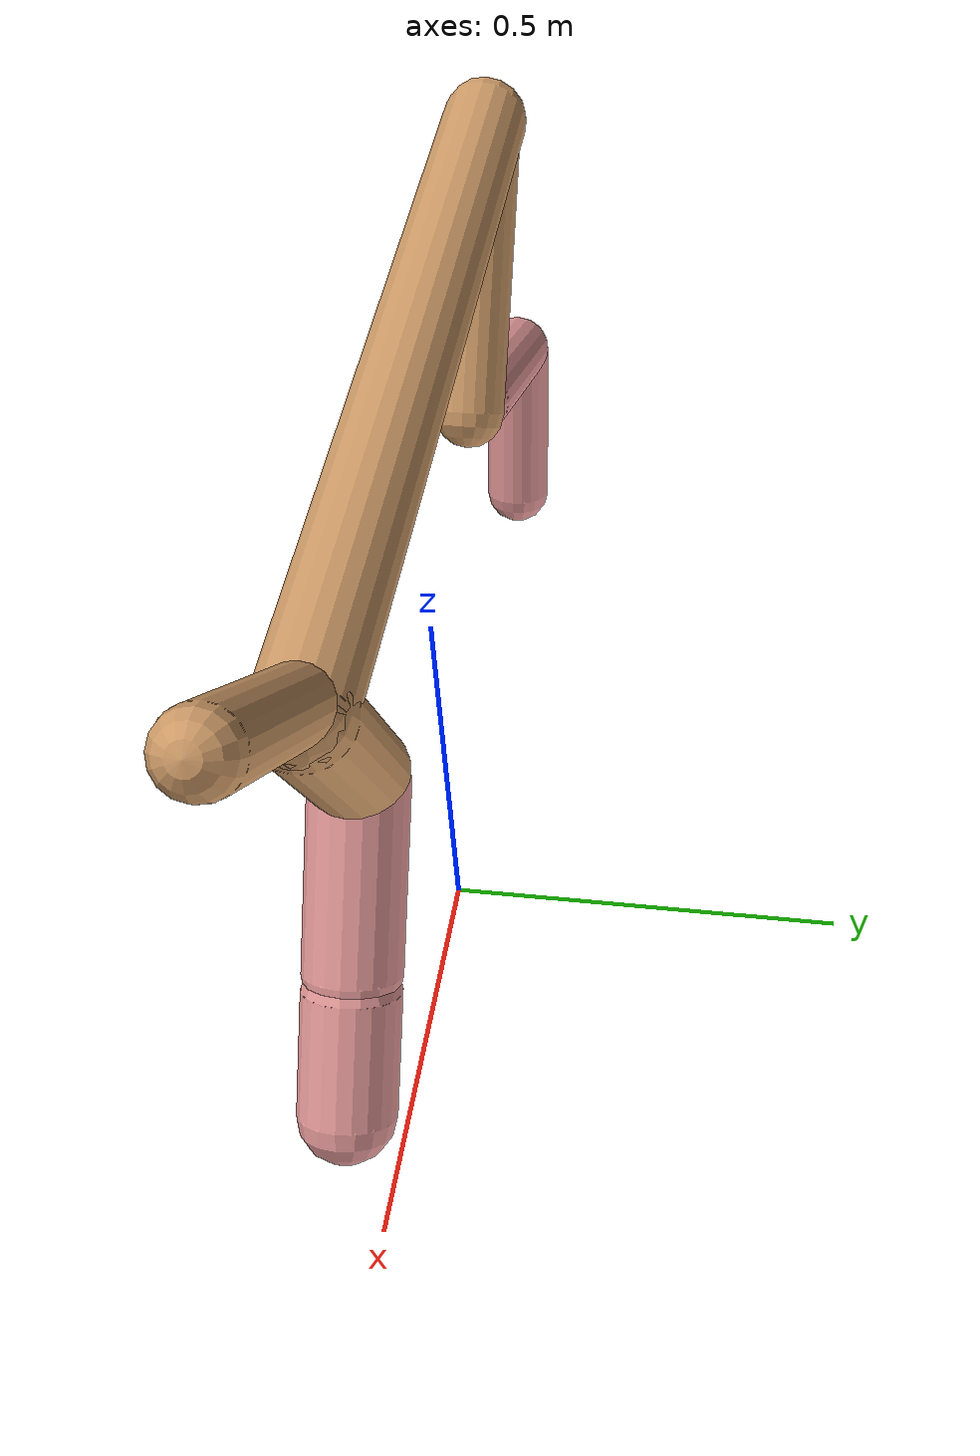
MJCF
<mujoco model="cheetah">
  <compiler angle="radian" coordinate="local" inertiafromgeom="true" settotalmass="14" />
  <default>
    <joint armature=".1" damping=".01" limited="true" solimplimit="0 .8 .03" solreflimit=".02 1" stiffness="8" />
    <geom conaffinity="0" condim="3" contype="1" friction="0.8 .1 .1" rgba="0.8 0.6 .4 1" solimp="0.0 0.8 0.01" solref="0.02 1" />
    <motor ctrllimited="true" ctrlrange="-1 1" />
  </default>
  <size nstack="300000" nuser_geom="1" />
  <option gravity="0 0 -9.81" timestep="0.01" />
  <worldbody>
    <body name="torso" pos="0.0 0.0 0.8610258366320113">
      <joint armature="0" axis="1 0 0" damping="0" limited="false" name="ignorex" pos="0 0 0" stiffness="0" type="slide" />
      <joint armature="0" axis="0 0 1" damping="0" limited="false" name="ignorez" pos="0 0 0" stiffness="0" type="slide" />
      <joint armature="0" axis="0 1 0" damping="0" limited="false" name="ignorey" pos="0 0 0" stiffness="0" type="hinge" />
      <geom fromto="-0.5 0.0 0.0 0.4676493928639918 0.0 0.0" name="torso" size="0.04941139801263308" type="capsule" />
      <geom axisangle="0 1 0 .87" name="head" pos="0.5676493928639917 0.0 0.1" size="0.03822486639889419 0.15" type="capsule" />

      <body name="bthigh" pos="-.5 0 0">
        <joint axis="0 1 0" damping="6" name="bthigh" pos="0 0 0" range="-.52 1.05" stiffness="240" type="hinge" />
        <geom axisangle="0 1 0 -3.8" name="bthigh" pos="0.11206439142250633 0.0 -0.14568370884925824" size="0.0430903600103127 0.16478707314545898" type="capsule" />
        <body name="bshin" pos="0.18412878284501266 0.0 -0.2813674176985165">
          <joint axis="0 1 0" damping="4.5" name="bshin" pos="0 0 0" range="-.785 .785" stiffness="180" type="hinge" />
          <geom axisangle="0 1 0 -2.03" name="bshin" pos="-0.15830837543269255 0.0 -0.07915418771634627" rgba="0.9 0.6 0.6 1" size="0.0430903600103127 0.1704693860125438" type="capsule" />
          <body name="bfoot" pos="-0.3166167508653851 0.0 -0.15830837543269255">
            <joint axis="0 1 0" damping="3" name="bfoot" pos="0 0 0" range="-.4 .785" stiffness="120" type="hinge" />
            <geom axisangle="0 1 0 -.27" name="bfoot" pos="0.03379013252313366 0.0 -0.10925476182479885" rgba="0.9 0.6 0.6 1" size="0.0430903600103127 0.10682748190119412" type="capsule" />
            <inertial mass="10" />
          </body>
        </body>
      </body>
      <body name="fthigh" pos="0.46764939286399176 0.0 0.0">
        <joint axis="0 1 0" damping="4.5" name="fthigh" pos="0 0 0" range="-1.5 0.8" stiffness="180" type="hinge" />
        <geom axisangle="0 1 0 .52" name="fthigh" pos="-0.06807427817549583 0.0 -0.11669876258656427" size="0.05228413330982307 0.12917814534483066" type="capsule" />
        <body name="fshin" pos="-0.13614855635099166 0.0 -0.23339752517312853">
          <joint axis="0 1 0" damping="3" name="fshin" pos="0 0 0" range="-1.2 1.1" stiffness="120" type="hinge" />
          <geom axisangle="0 1 0 -.6" name="fshin" pos="0.06321660196489189 0.0 -0.08753067964369644" rgba="0.9 0.6 0.6 1" size="0.05228413330982307 0.10295401057557932" type="capsule" />
          <body name="ffoot" pos="0.12643320392978377 0.0 -0.1750613592873929">
            <joint axis="0 1 0" damping="1.5" name="ffoot" pos="0 0 0" range="-3.1 -0.3" stiffness="60" type="hinge" />
            <geom axisangle="0 1 0 -.6" name="ffoot" pos="0.0439122647801686 0.0 -0.06830796743581784" rgba="0.9 0.6 0.6 1" size="0.05228413330982307 0.06798849754991088" type="capsule" />
            <inertial mass="10" />
          </body>
        </body>
      </body>
    </body>
  </worldbody>
  <actuator>
    <motor gear="120" joint="bthigh" name="bthigh" />
    <motor gear="90" joint="bshin" name="bshin" />
    <motor gear="60" joint="bfoot" name="bfoot" />
    <motor gear="120" joint="fthigh" name="fthigh" />
    <motor gear="60" joint="fshin" name="fshin" />
    <motor gear="30" joint="ffoot" name="ffoot" />
  </actuator>
</mujoco>
